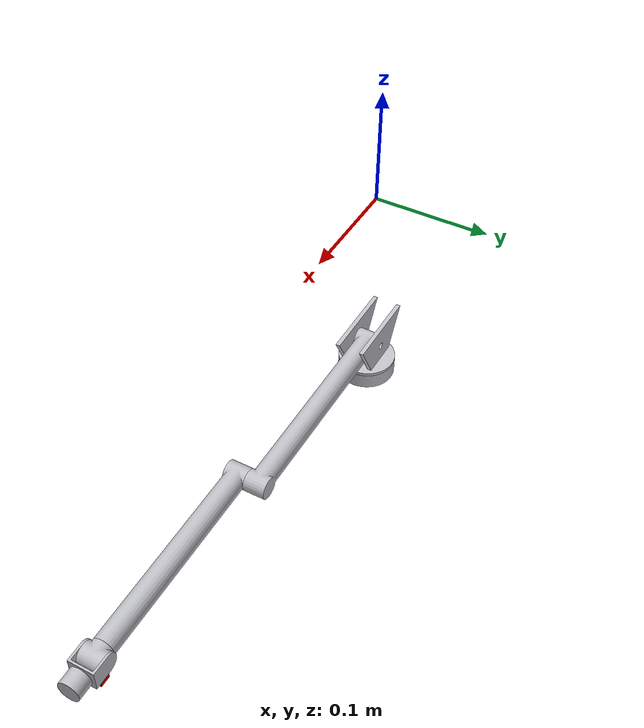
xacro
<?xml version="1.0" ?>
<robot name="aerial_arm" xmlns:xacro="http://www.ros.org/wiki/xacro">

<xacro:include filename="$(find arm_description)/urdf/materials.xacro" />
<xacro:include filename="$(find arm_description)/urdf/aerial_arm.trans" />
<xacro:include filename="$(find arm_description)/urdf/aerial_arm.gazebo" />
	<xacro:property name="fric" value="0.005" />
	<xacro:property name="fric_ee" value="0.005" />

<link name="world"/>

<joint name="fix_joint" type="fixed">
  <parent link="world"/>
  <child link="base_link"/>
  <origin rpy="${pi} 0 0" xyz="0 0 -0.2"/>
</joint>

<link name="base_link"/>
<joint name="orientation_joint" type="fixed">
  <parent link="base_link"/>
  <child link="orientation_link"/>
  <origin rpy="${pi/2} 0 -${pi/2}" xyz="0.0 0 0.0"/>
</joint>

<link name="orientation_link"/>

<joint name="base_arm_joint" type="fixed">
  <parent link="orientation_link"/>
  <child link="arm_base_link"/>
  <origin rpy="0 0 0" xyz="0.011623 -0.033576 -0.423212"/>
</joint>

<link name="arm_base_link">
  <inertial>
    <origin rpy="0 0 0" xyz="-0.011622835562823751 0.026076416772968965 0.4232115499965129"/>
    <mass value="0.6539245694270445"/>
    <inertia ixx="0.00013" ixy="0.0" ixz="0.0" iyy="0.000235" iyz="-0.0" izz="0.00013"/>
  </inertial>
  <visual>
    <origin rpy="0 0 0" xyz="0 0 0"/>
    <geometry>
      <mesh filename="package://arm_description/meshes/base_link.stl" scale="0.001 0.001 0.001"/>
    </geometry>
    <material name="silver"/>
  </visual>
  <collision>
    <origin rpy="0 0 0" xyz="0 0 0"/>
    <geometry>
      <mesh filename="package://arm_description/meshes/base_link.stl" scale="0.001 0.001 0.001"/>
    </geometry>
  </collision>
</link>

<link name="shoulder_2_1">
  <inertial>
    <origin rpy="0 0 0" xyz="-7.295146686063514e-06 -0.03272366123986107 8.378471211212268e-06"/>
    <mass value="0.18907008597028982"/>
    <inertia ixx="8.7e-05" ixy="0.0" ixz="0.0" iyy="8.1e-05" iyz="-0.0" izz="6.5e-05"/>
  </inertial>
  <visual>
    <origin rpy="0 0 0" xyz="0.011623 -0.033576 -0.423212"/>
    <geometry>
      <mesh filename="package://arm_description/meshes/shoulder_2_1.stl" scale="0.001 0.001 0.001"/>
    </geometry>
    <material name="silver"/>
  </visual>
  <collision>
    <origin rpy="0 0 0" xyz="0.011623 -0.033576 -0.423212"/>
    <geometry>
      <mesh filename="package://arm_description/meshes/shoulder_2_1.stl" scale="0.001 0.001 0.001"/>
    </geometry>
  </collision>
</link>

<link name="first_Link_200_1">
  <inertial>
    <origin rpy="0 0 0" xyz="0.01000015992057332 4.0839001024493837e-07 -0.10000041458331238"/>
    <mass value="0.04111040389630535"/>
    <inertia ixx="0.000248" ixy="-0.0" ixz="-0.0" iyy="0.000248" iyz="0.0" izz="3e-06"/>
  </inertial>
  <visual>
    <origin rpy="0 0 0" xyz="0.021623 0.001424 -0.423212"/>
    <geometry>
      <mesh filename="package://arm_description/meshes/first_Link_200_1.stl" scale="0.001 0.001 0.001"/>
    </geometry>
    <material name="silver"/>
  </visual>
  <collision>
    <origin rpy="0 0 0" xyz="0.021623 0.001424 -0.423212"/>
    <geometry>
      <mesh filename="package://arm_description/meshes/first_Link_200_1.stl" scale="0.001 0.001 0.001"/>
    </geometry>
  </collision>
</link>

<link name="second_Link_200__1__1">
  <inertial>
    <origin rpy="0 0 0" xyz="0.010000158743883165 4.123575158946919e-07 -0.07070574631913057"/>
    <mass value="0.031775151367082886"/>
    <inertia ixx="0.000128" ixy="-0.0" ixz="0.0" iyy="0.000128" iyz="0.0" izz="2e-06"/>
  </inertial>
  <visual>
    <origin rpy="0 0 0" xyz="0.041623 0.001424 -0.223212"/>
    <geometry>
      <mesh filename="package://arm_description/meshes/second_Link_200__1__1.stl" scale="0.001 0.001 0.001"/>
    </geometry>
    <material name="silver"/>
  </visual>
  <collision>
    <origin rpy="0 0 0" xyz="0.041623 0.001424 -0.223212"/>
    <geometry>
      <mesh filename="package://arm_description/meshes/second_Link_200__1__1.stl" scale="0.001 0.001 0.001"/>
    </geometry>
  </collision>
</link>

<link name="Yaw_1">
  <inertial>
    <origin rpy="0 0 0" xyz="1.6443717608394248e-07 4.10947984520911e-07 -0.009712908448932418"/>
    <mass value="0.019335321488620901"/>
    <inertia ixx="1e-06" ixy="0.0" ixz="0.0" iyy="1e-06" iyz="0.0" izz="1e-06"/>
  </inertial>
  <visual>
    <origin rpy="0 0 0" xyz="0.031623 0.001424 -0.033212"/>
    <geometry>
      <mesh filename="package://arm_description/meshes/Yaw_1.stl" scale="0.001 0.001 0.001"/>
    </geometry>
    <material name="silver"/>
  </visual>
  <collision>
    <origin rpy="0 0 0" xyz="0.031623 0.001424 -0.033212"/>
    <geometry>
      <mesh filename="package://arm_description/meshes/Yaw_1.stl" scale="0.001 0.001 0.001"/>
    </geometry>
  </collision>
</link>

<link name="Pitch_1">
  <inertial>
    <origin rpy="0 0 0" xyz="0.012000164437172327 4.1677296895841626e-07 -0.00730630929765641"/>
    <mass value="0.017370138299177099"/>
    <inertia ixx="1e-06" ixy="0.0" ixz="-0.0" iyy="1e-06" iyz="-0.0" izz="1e-06"/>
  </inertial>
  <visual>
    <origin rpy="0 0 0" xyz="0.043623 0.001424 -0.023212"/>
    <geometry>
      <mesh filename="package://arm_description/meshes/Pitch_1.stl" scale="0.001 0.001 0.001"/>
    </geometry>
    <material name="silver"/>
  </visual>
  <collision>
    <origin rpy="0 0 0" xyz="0.043623 0.001424 -0.023212"/>
    <geometry>
      <mesh filename="package://arm_description/meshes/Pitch_1.stl" scale="0.001 0.001 0.001"/>
    </geometry>
  </collision>
</link>

<link name="Roll_1">
  <inertial>
    <origin rpy="0 0 0" xyz="1.6443717608394248e-07 4.1677296895668153e-07 0.007499957912210709"/>
    <mass value="0.016738716241950105"/>
    <inertia ixx="1e-06" ixy="0.0" ixz="-0.0" iyy="1e-06" iyz="-0.0" izz="1e-06"/>
  </inertial>
  <visual>
    <origin rpy="0 0 0" xyz="0.031623 0.001424 0.00881"/>
    <geometry>
      <mesh filename="package://arm_description/meshes/Roll_1.stl" scale="0.001 0.001 0.001"/>
    </geometry>
    <material name="silver"/>
  </visual>
  <collision>
    <origin rpy="0 0 0" xyz="0.031623 0.001424 0.00881"/>
    <geometry>
      <mesh filename="package://arm_description/meshes/Roll_1.stl" scale="0.001 0.001 0.001"/>
    </geometry>
  </collision>
</link>

<xacro:property name="limit" value="100" />

<joint name="Rev3" type="revolute">
  <origin rpy="0 0 0" xyz="-0.011623 0.033576 0.423212"/>
  <parent link="arm_base_link"/>
  <child link="shoulder_2_1"/>
  <axis xyz="0.0 1.0 -0.0"/>
  <limit
      lower="-0.785375"
      upper="0.785375"
      effort="5"
      velocity="1.57"
   />
 <dynamics damping="0.0" friction="${fric}"/>
</joint>

<!--      lower="-3.1415"-->
<!--      upper="3.1415"-->
<!--      effort="5"-->
<!--      velocity="1.57"-->

<joint name="Rev4" type="revolute">
  <origin rpy="0 0 0" xyz="-0.01 -0.035 0.0"/>
  <parent link="shoulder_2_1"/>
  <child link="first_Link_200_1"/>
  <axis xyz="1.0 0.0 0.0"/>
 <limit
      lower="-3.1415"
      upper="3.1415"
      effort="5"
      velocity="1.57"
   />
 <dynamics damping="0.0" friction="${fric}"/>
</joint>

<joint name="Rev5" type="revolute">
  <origin rpy="0 0 0" xyz="-0.02 0.0 -0.2"/>
  <parent link="first_Link_200_1"/>
  <child link="second_Link_200__1__1"/>
  <axis xyz="1.0 0.0 0.0"/>
 <limit
      lower="-3.1415"
      upper="3.1415"
      effort="5"
      velocity="1.57"
   />
 <dynamics damping="0.0" friction="${fric}"/>
</joint>

<joint name="Rev6" type="revolute">
  <origin rpy="0 0 0" xyz="0.01 0.0 -0.19"/>
  <parent link="second_Link_200__1__1"/>
  <child link="Yaw_1"/>
  <axis xyz="0.0 0.0 1.0"/>
 <limit
      lower="-3.1415"
      upper="3.1415"
      effort="5"
      velocity="1.57"
   />
 <dynamics damping="0.0" friction="${fric_ee}"/>
</joint>

<joint name="Rev7" type="revolute">
  <origin rpy="0 0 0" xyz="-0.012 0.0 -0.01"/>
  <parent link="Yaw_1"/>
  <child link="Pitch_1"/>
  <axis xyz="1.0 -0.0 0.0"/>
 <limit
      lower="-1.80"
      upper="1.80"
      effort="5"
      velocity="1.57"
   />
 <dynamics damping="0.0" friction="${fric_ee}"/>
</joint>

<joint name="Rev8" type="revolute">
  <origin rpy="0 0 0" xyz="0.012 0.0 -0.032022"/>
  <parent link="Pitch_1"/>
  <child link="Roll_1"/>
  <axis xyz="-0.0 -0.0 -1.0"/>
 <limit
      lower="-3.1415"
      upper="3.1415"
      effort="5"
      velocity="1.57"
   />
 <dynamics damping="0.0" friction="${fric_ee}"/>
</joint>

<!-- CAMERA SENSOR -->

   <link name="camera_link">
    <inertial>
      <origin rpy="0 0 0" xyz="0 0 0"/>
      <mass value="0.001"/>
      <inertia ixx="1e-07" ixy="0.0" ixz="-0.0" iyy="1e-07" iyz="-0.0" izz="1e-07"/>
    </inertial>
    <visual>
      <origin rpy="0 0 0" xyz="0.0 0.0 0"/>
      <geometry>
        <box size="0.01 0.01 0.01"/>
      </geometry>
	 <material name="red">
	  <color rgba="${204/255} ${0/255} ${0/255} 1.0"/>
	</material>
    </visual>
    <collision>
      <origin rpy="0 0 0" xyz="0.0 0.0 0"/>
      <geometry>
        <box size="0.01 0.01 0.01"/>
      </geometry>
    </collision>
  </link>

   <joint name="camera_joint" type="fixed">
    <origin rpy="0 ${pi/2} ${pi/2}" xyz="0.012 0.025 0.0"/>
    <parent link="Pitch_1"/>
    <child link="camera_link"/>
  </joint>

  <gazebo reference="camera_link">
    <sensor type="camera" name="camera">
      <update_rate>30.0</update_rate>
      <camera name="head">
        <horizontal_fov>1.3962634</horizontal_fov>
        <image>
          <width>800</width>
          <height>600</height>
          <format>R8G8B8</format>
        </image>
        <clip>
          <near>0.02</near>
          <far>300</far>
        </clip>
        <noise>
          <type>gaussian</type>
          <mean>0.0</mean>
          <stddev>0.007</stddev>
        </noise>
      </camera>
      <plugin name="camera_controller" filename="libgazebo_ros_camera.so">
        <alwaysOn>true</alwaysOn>
        <updateRate>0.0</updateRate>
        <cameraName>/camera</cameraName>
        <imageTopicName>image_raw</imageTopicName>
        <cameraInfoTopicName>camera_info</cameraInfoTopicName>
        <frameName>camera_link</frameName>
        <hackBaseline>0.07</hackBaseline>
        <distortionK1>0.0</distortionK1>
        <distortionK2>0.0</distortionK2>
        <distortionK3>0.0</distortionK3>
        <distortionT1>0.0</distortionT1>
        <distortionT2>0.0</distortionT2>
      </plugin>
    </sensor>
  </gazebo>

<gazebo reference="Roll_1">
	<sensor name="contact_sensor" type="contact">
		<always_on>true</always_on>
		<contact>
			<collision>Roll_1_collision</collision>
		</contact>
		<plugin name="force_sensor" filename="libgazebo_ros_bumper.so">
			<bumperTopicName>/ndt2/ft_sensor</bumperTopicName>
			<frameName>Roll_1</frameName>
		</plugin>
	</sensor>
</gazebo>

  <gazebo>
    <plugin name="gazebo_ros_control" filename="libgazebo_ros_control.so">
    </plugin>
  </gazebo>

</robot>

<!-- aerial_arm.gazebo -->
<robot name="aerial_arm" xmlns:xacro="http://www.ros.org/wiki/xacro" >

<xacro:property name="body_color" value="Gazebo/Grey" />
<xacro:property name="ee_color" value="Gazebo/SkyBlue" />

<gazebo reference="base_link">
  <material>${body_color}</material>
  <mu1>0.2</mu1>
  <mu2>0.2</mu2>
  <selfCollide>true</selfCollide>
  <gravity>true</gravity>
</gazebo>

<gazebo reference="shoulder_2_1">
  <material>${body_color}</material>
  <mu1>0.2</mu1>
  <mu2>0.2</mu2>
  <selfCollide>true</selfCollide>
</gazebo>

<gazebo reference="first_Link_200_1">
  <material>${body_color}</material>
  <mu1>0.2</mu1>
  <mu2>0.2</mu2>
  <selfCollide>true</selfCollide>
</gazebo>

<gazebo reference="second_Link_200__1__1">
  <material>${body_color}</material>
  <mu1>0.2</mu1>
  <mu2>0.2</mu2>
  <selfCollide>true</selfCollide>
</gazebo>

<gazebo reference="Yaw_1">
  <material>${body_color}</material>
  <mu1>0.2</mu1>
  <mu2>0.2</mu2>
  <selfCollide>true</selfCollide>
</gazebo>

<gazebo reference="Pitch_1">
  <material>${body_color}</material>
  <mu1>0.2</mu1>
  <mu2>0.2</mu2>
  <selfCollide>true</selfCollide>
</gazebo>

<gazebo reference="Roll_1">
  <material>${ee_color}</material>
  <mu1>0.2</mu1>
  <mu2>0.2</mu2>
  <selfCollide>true</selfCollide>
</gazebo>
</robot>
